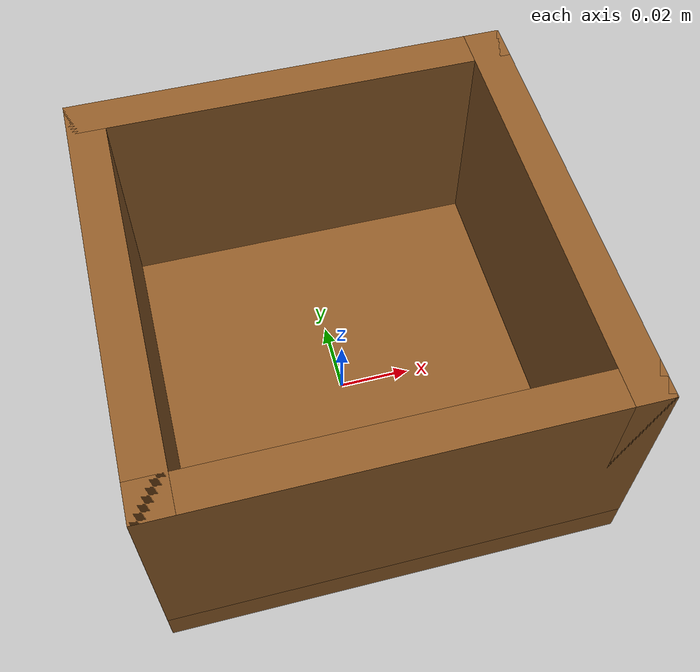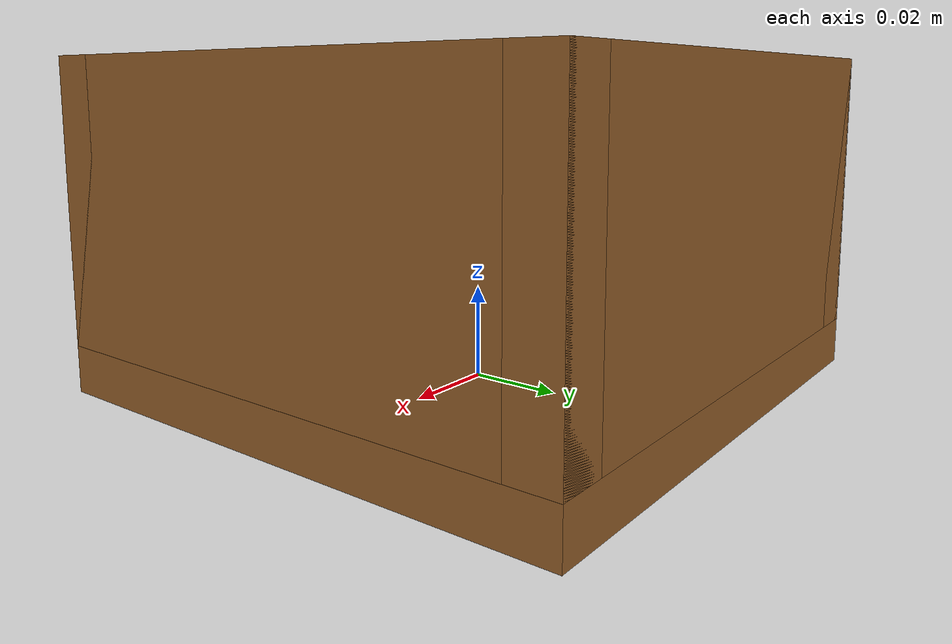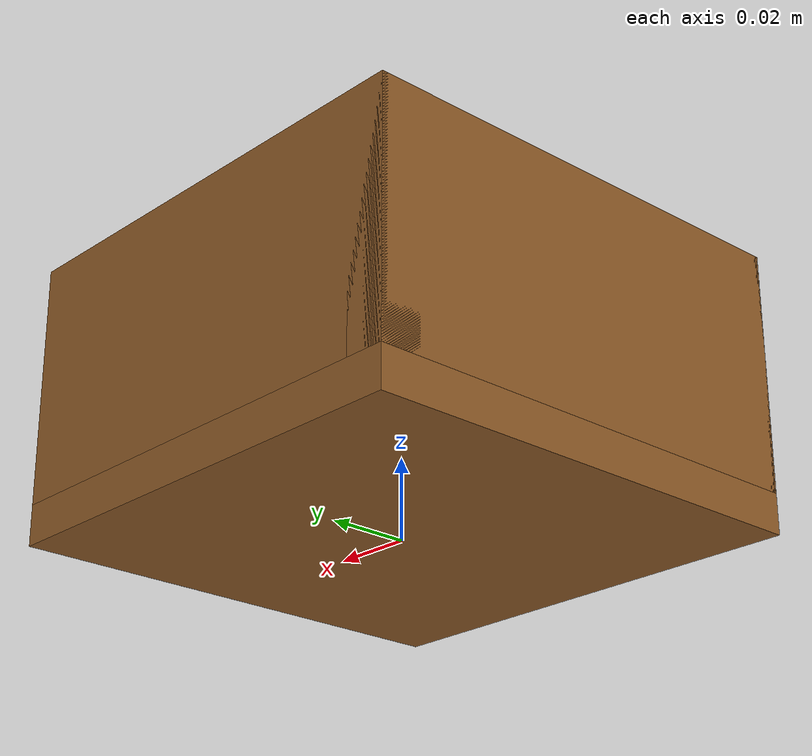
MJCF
<mujoco model="brown_box">
  <asset>
  </asset>
  <worldbody>
    <body>
      <body name="object" pos="0 0 0">

        <!-- Bottom plate: 12cm x 12cm x 1cm, bottom face at z=0 -->
        <geom type="box" size="0.060 0.060 0.005" pos="0 0 0.005"
              density="500" friction="0.95 0.3 0.1"
              solimp="0.998 0.998 0.001" solref="0.001 1"
              rgba="0.55 0.35 0.15 1" group="0"/>

        <!-- Front wall (y+): 12cm wide, 1cm thick, 6cm tall -->
        <geom type="box" size="0.060 0.005 0.030" pos="0 0.055 0.040"
              density="500" friction="0.95 0.3 0.1"
              solimp="0.998 0.998 0.001" solref="0.001 1"
              rgba="0.55 0.35 0.15 1" group="0"/>

        <!-- Back wall (y-) -->
        <geom type="box" size="0.060 0.005 0.030" pos="0 -0.055 0.040"
              density="500" friction="0.95 0.3 0.1"
              solimp="0.998 0.998 0.001" solref="0.001 1"
              rgba="0.55 0.35 0.15 1" group="0"/>

        <!-- Left wall (x+): spans full depth including corners -->
        <geom type="box" size="0.005 0.060 0.030" pos="0.055 0 0.040"
              density="500" friction="0.95 0.3 0.1"
              solimp="0.998 0.998 0.001" solref="0.001 1"
              rgba="0.55 0.35 0.15 1" group="0"/>

        <!-- Right wall (x-) -->
        <geom type="box" size="0.005 0.060 0.030" pos="-0.055 0 0.040"
              density="500" friction="0.95 0.3 0.1"
              solimp="0.998 0.998 0.001" solref="0.001 1"
              rgba="0.55 0.35 0.15 1" group="0"/>

        <!-- Containment region: box volume inside the box used by the In predicate. -->
        <site type="box" pos="0 0 0.040" size="0.045 0.045 0.028"
              name="contain_region" rgba="0 0.8 0 0" group="0" quat="1 0 0 0"/>
      </body>
      <!-- Reference sites for robosuite placement: bottom at z=0 (table surface contact). -->
      <site rgba="0 0 0 0" size="0.005" pos="0 0 0" name="bottom_site"/>
      <site rgba="0 0 0 0" size="0.005" pos="0 0 0.070" name="top_site"/>
      <site rgba="0 0 0 0" size="0.005" pos="0.060 0 0" name="horizontal_radius_site"/>
    </body>
  </worldbody>
</mujoco>
